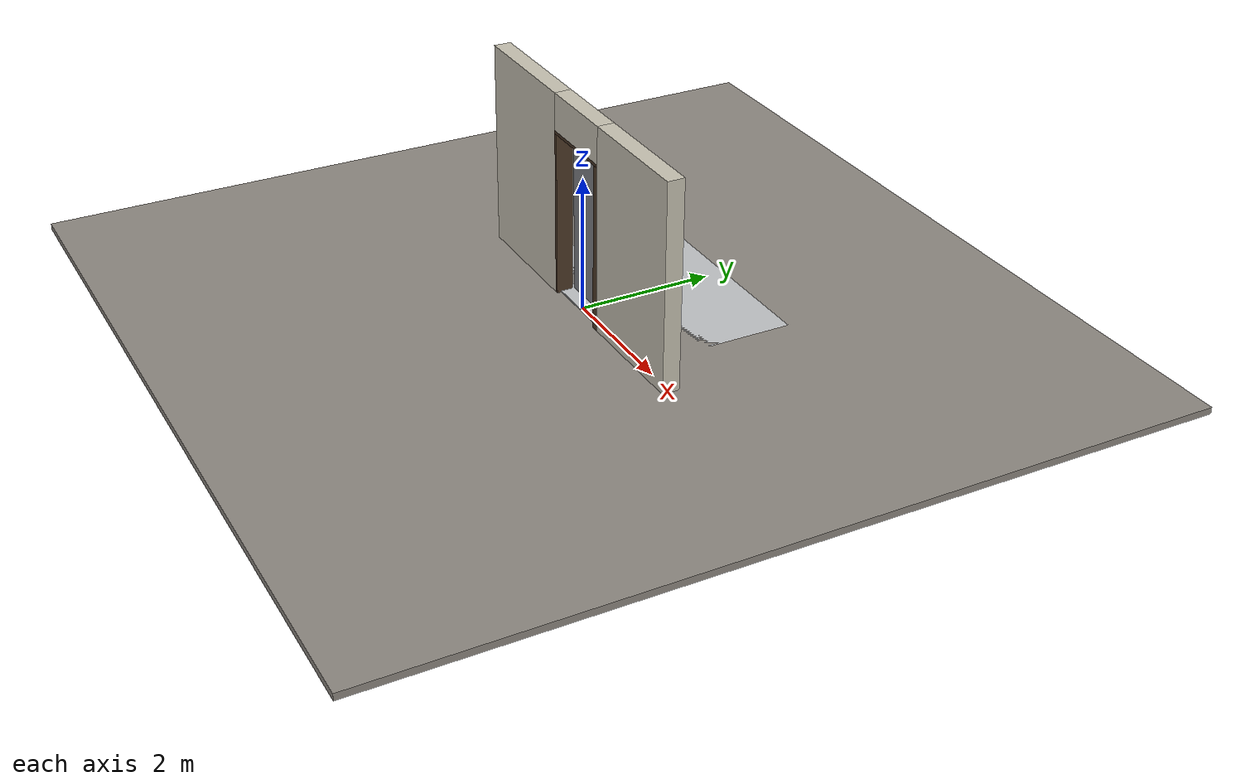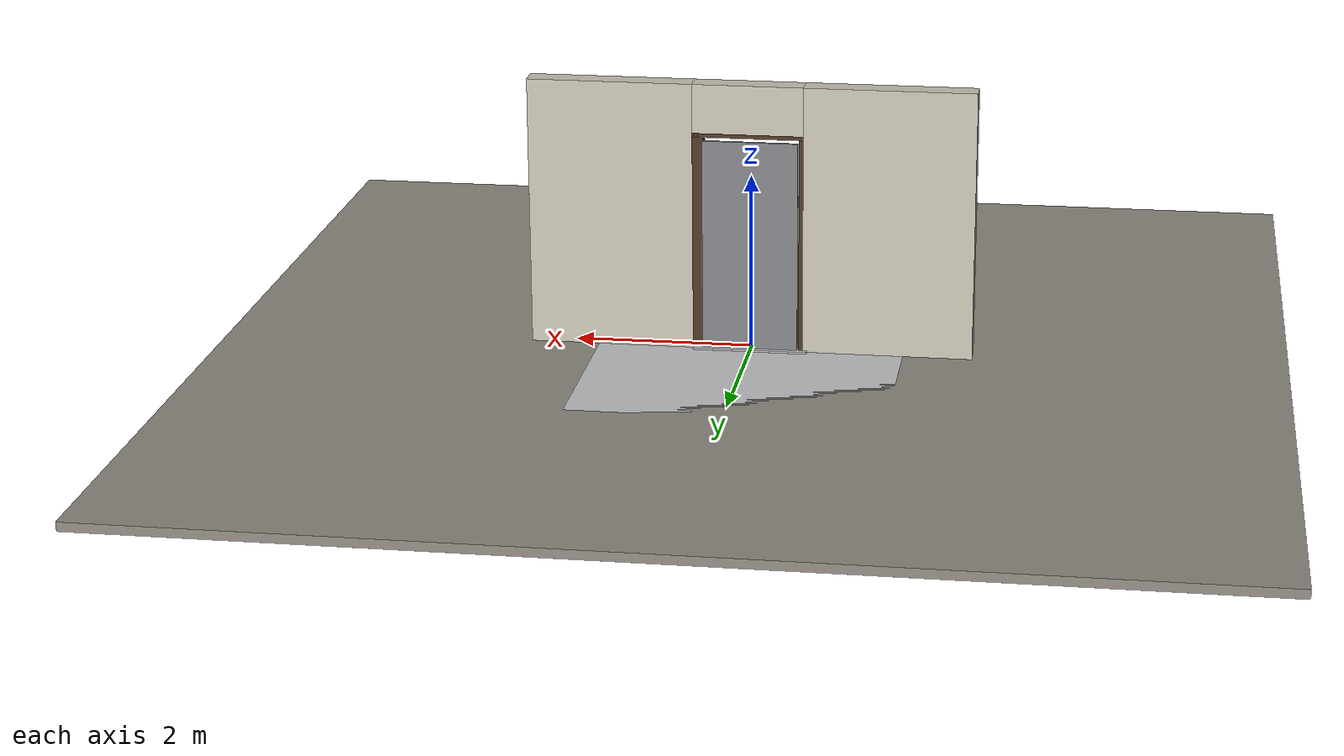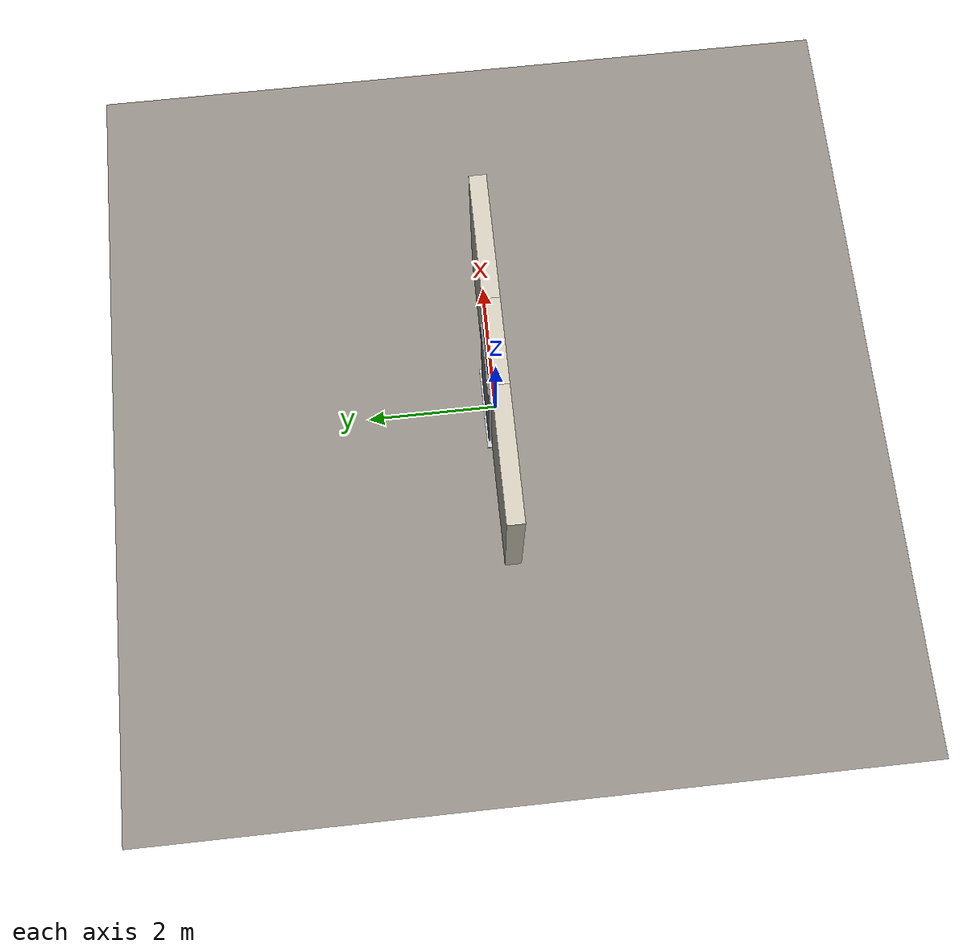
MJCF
<?xml version="1.0" ?>
<mujoco model="db0607_elevator_minimal">
  <compiler angle="radian" meshdir="../../hardware" texturedir="../../textures" autolimits="true" inertiafromgeom="false"/>
  <option timestep="0.002" integrator="implicitfast" cone="elliptic" impratio="10" noslip_iterations="3">
    <flag multiccd="enable"/>
  </option>
  <size memory="16M"/>
  <default>
    <geom condim="4" solref="0.005 1" solimp="0.95 0.99 0.001"/>
    <joint solreflimit="0.005 1" solimplimit="0.95 0.99 0.001"/>
    <tendon solreflimit="0.005 1"/>
    <equality solref="0.002 1"/>
  </default>
  <visual>
    <headlight ambient="0.4 0.4 0.4" diffuse="0.7 0.7 0.7" specular="0.2 0.2 0.2"/>
    <quality shadowsize="4096"/>
    <map znear="0.01" zfar="60"/>
  </visual>
  <asset>
    <material name="mat_floor" rgba="0.55 0.53 0.5 1" specular="0.2" shininess="0.15" reflectance="0"/>
    <material name="mat_wall" rgba="0.78 0.76 0.7 1" specular="0.2" shininess="0.1" reflectance="0"/>
    <material name="mat_frame" rgba="0.3 0.22 0.15 1" specular="0.74" shininess="0.5" reflectance="0.36"/>
    <material name="mat_track" rgba="0.8 0.81 0.83 1" specular="0.8" shininess="0.6" reflectance="0.4"/>
    <material name="mat_leaf" rgba="0.5 0.51 0.53 1" specular="0.23" shininess="0.48" reflectance="0.02"/>
    <material name="mat_roller" rgba="0.65 0.66 0.68 1" specular="0.74" shininess="0.5" reflectance="0.36"/>
    <material name="mat_hook" rgba="0.75 0.76 0.77 1" specular="0.8" shininess="0.65" reflectance="0.4"/>
    <material name="mat_sill" rgba="0.75 0.76 0.77 1" specular="0.8" shininess="0.65" reflectance="0.4"/>
    <material name="mat_wallreader" rgba="0.05 0.05 0.05 1" specular="0.38" shininess="0.3" reflectance="0.12"/>
    <material name="mat_callbtn" rgba="0.9 0.9 0.9 1" specular="0.68" shininess="0.7" reflectance="0.32"/>
    <texture name="skybox" type="skybox" builtin="gradient" rgb1="0.6 0.7 0.85" rgb2="0.9 0.92 0.95" width="256" height="256"/>
  </asset>
  <worldbody>
    <light name="sun" pos="1.5 -2.5 4" dir="-0.3 0.5 -0.8" directional="true" diffuse="0.8 0.8 0.8" specular="0.3 0.3 0.3" castshadow="true"/>
    <light name="fill" pos="-1.5 2.5 3" dir="0.3 -0.5 -0.7" directional="true" diffuse="0.35 0.35 0.4" castshadow="false"/>
    <camera name="robot_view" pos="0 -2.93125 2.05075" xyaxes="1 0 0 0 0.26963 0.962964" fovy="52"/>
    <camera name="far_view" pos="0 2.93125 2.05075" xyaxes="-1 0 0 0 -0.26963 0.962964" fovy="52"/>
    <camera name="iso" pos="2.22775 -2.46225 2.51975" xyaxes="0.741536 0.670913 0 -0.242917 0.268487 0.932151" fovy="46"/>
    <camera name="detail_handle" pos="0.48 -0.8 1.28" xyaxes="0.97561 0.219512 0 -0.070934 0.315262 0.94635" fovy="38"/>
    <geom name="floor" type="box" size="6 6 0.05" pos="0 0 -0.05" material="mat_floor" group="0" contype="1" conaffinity="1" friction="0.8 0.005 0.0001" density="2400"/>
    <geom name="wall_left" type="box" size="0.955 0.125 1.53" pos="-1.545 0 1.53" material="mat_wall" group="0" contype="1" conaffinity="1" friction="0.6 0.005 0.0001" density="800"/>
    <geom name="wall_right" type="box" size="0.925 0.125 1.53" pos="1.575 0 1.53" material="mat_wall" group="0" contype="1" conaffinity="1" friction="0.6 0.005 0.0001" density="800"/>
    <geom name="wall_header" type="box" size="0.62 0.125 0.2775" pos="0.03 0 2.7825" material="mat_wall" group="0" contype="1" conaffinity="1" friction="0.6 0.005 0.0001" density="800"/>
    <geom name="jamb_l" type="box" size="0.0225 0.125 1.23" pos="-0.5675 0 1.23" material="mat_frame" group="0" contype="1" conaffinity="1" friction="0.6 0.005 0.0001" density="300"/>
    <geom name="jamb_head" type="box" size="0.59 0.125 0.0225" pos="0 0 2.4825" material="mat_frame" group="0" contype="1" conaffinity="1" friction="0.6 0.005 0.0001" density="300"/>
    <geom name="jamb_latch_0" type="box" size="0.0525 0.125 1.23" pos="0.5975 0 1.23" material="mat_frame" group="0" contype="1" conaffinity="1" friction="0.6 0.005 0.0001" density="300"/>
    <geom name="sill" type="box" size="0.645 0.1285 0.01" pos="0 0.0685 0.01" material="mat_sill" group="0" contype="1" conaffinity="1" friction="0.6 0.005 0.0001" density="7900"/>
    <geom name="car_floor" type="box" size="1.725 1.1 0.01" pos="0 1.2 -0.01" material="mat_sill" group="0" contype="1" conaffinity="1" friction="0.6 0.005 0.0001" density="7900"/>
    <site name="approach_point" pos="0 -1.5 0" quat="1 0 0 0" size="0.05" rgba="0.2 0.9 0.2 0.5" group="4"/>
    <site name="goal_point" pos="0 1.5 0" quat="1 0 0 0" size="0.05" rgba="0.2 0.9 0.2 0.5" group="4"/>
    <site name="door_plane_center" pos="0 0 1.23" quat="1 0 0 0" size="0.02" rgba="0.2 0.9 0.2 0.5" group="4"/>
    <body name="leaf" pos="0 0.152 0">
      <inertial pos="0 0 1.23" mass="77.465359" quat="-0.5 0.5 0.5 0.5" diaginertia="7.396650681 37.18918215 44.574213027"/>
      <joint name="leaf_slide" type="slide" axis="-1 0 0" limited="true" range="0 1.06" damping="5.87348" frictionloss="7.597173" armature="0.5"/>
      <geom name="leaf_slab" type="box" size="0.535 0.015 1.2" pos="0 0 1.23" material="mat_leaf" group="0" contype="1" conaffinity="1" friction="0.35 0.005 0.0001" density="1"/>
      <site name="leaf_edge_mid" pos="0.535 0 1.23" quat="1 0 0 0" size="0.02" rgba="0.2 0.9 0.2 0.5" group="4"/>
    </body>
  </worldbody>
  <equality>
    <weld name="leaf_interlock_hold" body1="leaf" body2="world" active="true"/>
  </equality>
  <actuator>
    <position name="leaf_drive" joint="leaf_slide" kp="400" kv="60" forcerange="-135 135" ctrlrange="0 1.06"/>
  </actuator>
  <sensor>
    <jointpos name="leaf_slide_pos" joint="leaf_slide"/>
    <jointvel name="leaf_slide_vel" joint="leaf_slide"/>
  </sensor>
</mujoco>
